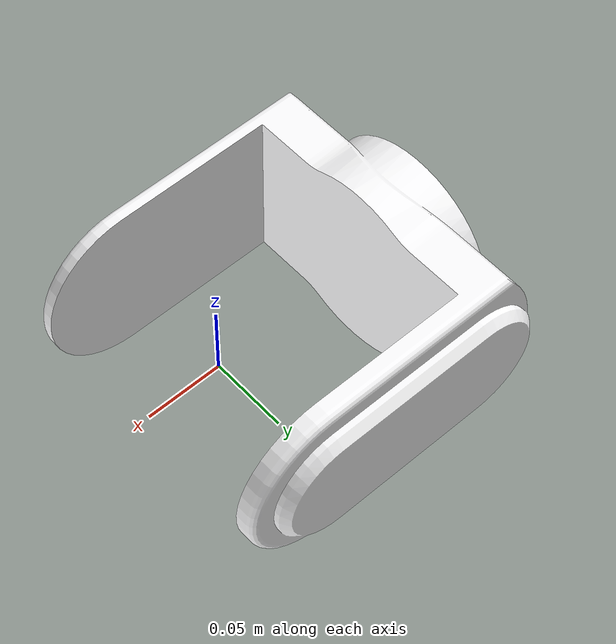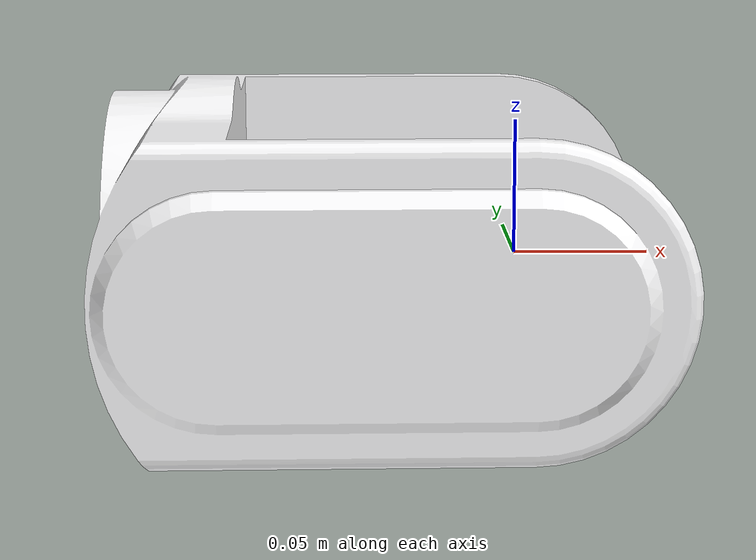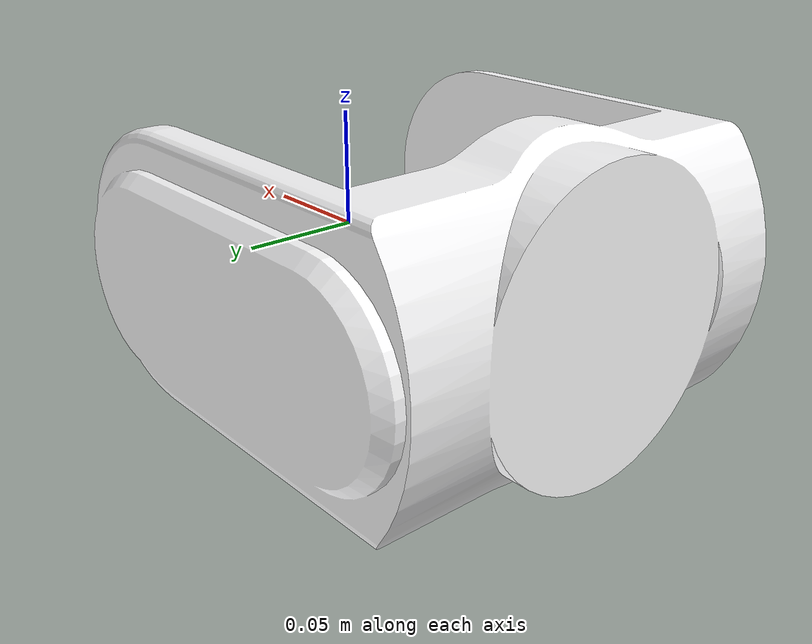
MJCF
<mujoco model="LINK_1">
  <default>
    <default class="visual">
      <geom group="2" type="mesh" contype="0" conaffinity="0"/>
    </default>
    <default class="collision">
      <geom group="3" type="mesh"/>
    </default>
  </default>
  <asset>
    <material name="254,254,255" specular="0.9973853333333333" shininess="1.0" rgba="0.996078 0.996078 1.000000 1.000000"/>
    <mesh file="LINK_1.obj"/>
    <mesh file="LINK_1_collision_0.obj"/>
    <mesh file="LINK_1_collision_1.obj"/>
    <mesh file="LINK_1_collision_2.obj"/>
    <mesh file="LINK_1_collision_3.obj"/>
    <mesh file="LINK_1_collision_4.obj"/>
    <mesh file="LINK_1_collision_5.obj"/>
    <mesh file="LINK_1_collision_6.obj"/>
    <mesh file="LINK_1_collision_7.obj"/>
    <mesh file="LINK_1_collision_8.obj"/>
    <mesh file="LINK_1_collision_9.obj"/>
  </asset>
  <worldbody>
    <body name="LINK_1">
      <geom material="254,254,255" mesh="LINK_1" class="visual"/>
      <geom mesh="LINK_1_collision_0" rgba="0.003354431611406139 0.4641042987017786 0.34132126111888217 1" class="collision"/>
      <geom mesh="LINK_1_collision_1" rgba="0.0627148624281123 0.07060176588948286 0.9415665229314217 1" class="collision"/>
      <geom mesh="LINK_1_collision_2" rgba="0.2264732965303896 0.6013866089381257 0.36690619391865464 1" class="collision"/>
      <geom mesh="LINK_1_collision_3" rgba="0.34860545525516895 0.3253431138929639 0.8741533837311316 1" class="collision"/>
      <geom mesh="LINK_1_collision_4" rgba="0.6986533107777476 0.07448914640550919 0.24774453719973544 1" class="collision"/>
      <geom mesh="LINK_1_collision_5" rgba="0.395168224113259 0.9314412968084643 0.4583033382231979 1" class="collision"/>
      <geom mesh="LINK_1_collision_6" rgba="0.4242296897862383 0.3213022875027003 0.8073715757451216 1" class="collision"/>
      <geom mesh="LINK_1_collision_7" rgba="0.6654233177492804 0.9208819782634088 0.5608825197402129 1" class="collision"/>
      <geom mesh="LINK_1_collision_8" rgba="0.5013940577990441 0.929683560711256 0.22662347774129088 1" class="collision"/>
      <geom mesh="LINK_1_collision_9" rgba="0.40315885295466924 0.6445296399823477 0.1415359688420449 1" class="collision"/>
    </body>
  </worldbody>
</mujoco>
